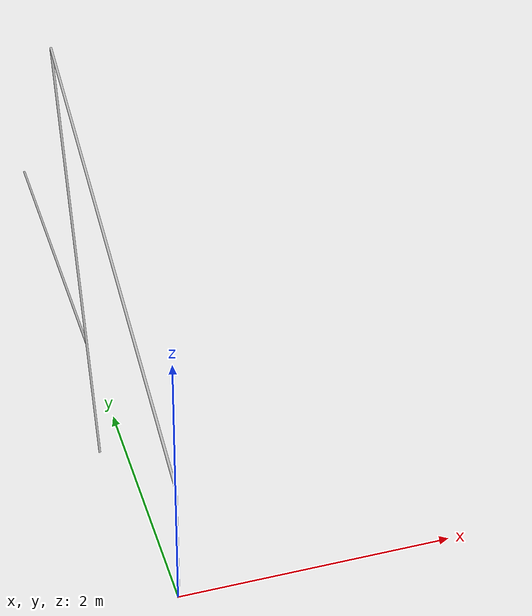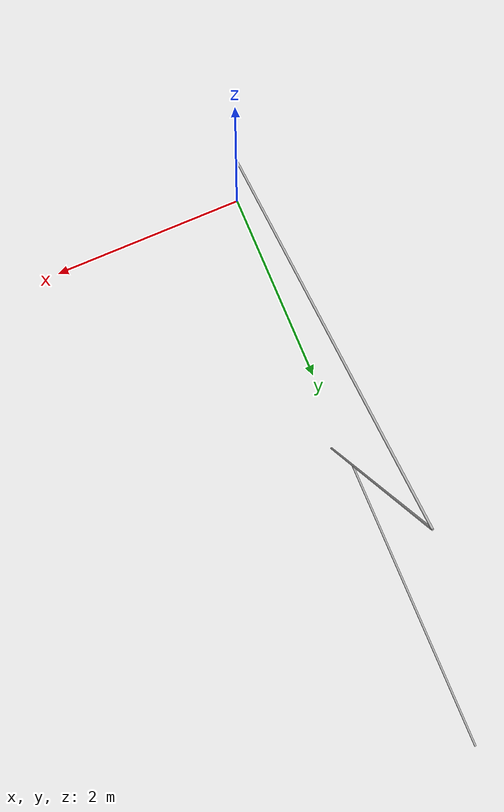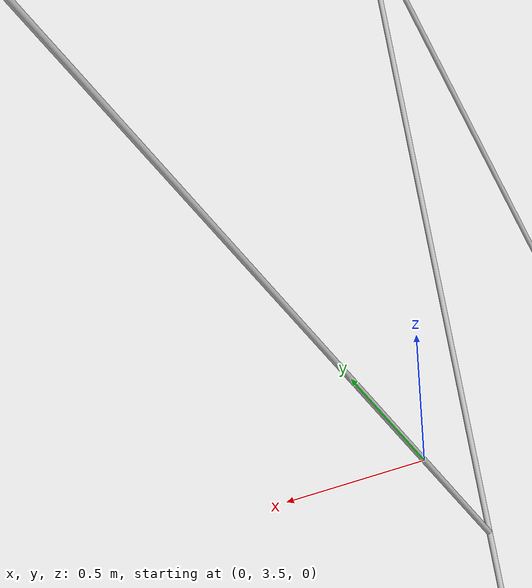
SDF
<sdf version='1.7'>
  <model name='four_bar_linkage'>
    <joint name='world2link0' type='fixed'>
      <pose relative_to='__model__'>0 0 0 0 0 0</pose>
      <parent>world</parent>
      <child>link0</child>
    </joint>
    <link name='link_0'>
      <pose relative_to='world2link0'>0 3 0 0 0 0</pose>
      <visual name='link_0'>
        <pose>0 1.5 0 1.5708 0 0</pose>
        <geometry>
            <cylinder>
              <radius>0.01</radius>
              <length>3.0</length>
            </cylinder>
        </geometry>
      </visual>
    </link>

    <joint name='joint1' type='revolute'>
      <pose relative_to='link0'>0 0 0 0 0 0</pose>
      <parent>link_0</parent>
      <child>link_1</child>
      <axis>
        <xyz>1 0 0</xyz>
      </axis>
    </joint>
    <link name='link_1'>
      <pose relative_to='joint1'>0 0 0 0 0 0</pose>
      <inertial>
        <pose>0 0 0.5 0 -0 0</pose>
        <mass>1</mass>
        <inertia>
          <ixx>0.08333</ixx>
          <ixy>0</ixy>
          <ixz>0</ixz>
          <iyy>0.08333</iyy>
          <iyz>0</iyz>
          <izz>0</izz>
        </inertia>
      </inertial>
      <visual name='link1'>
        <pose>0 0 0.5 0 0 0</pose>
        <geometry>
            <cylinder>
              <radius>0.01</radius>
              <length>1.0</length>
            </cylinder>
        </geometry>
      </visual>
    </link>

    <joint name='joint2' type='revolute'>
      <pose relative_to='link_1'>0 0 1 -1.2175 0 0</pose>
      <parent>link_1</parent>
      <child>link_2</child>
      <axis>
        <xyz>1 0 0</xyz>
      </axis>
    </joint>
    <link name='link_2'>
      <pose relative_to='joint2'>0 0 0 0 0 0</pose>
      <inertial>
        <pose>0 0 2 0 0 0</pose>
        <mass>4</mass>
        <inertia>
          <ixx>5.333</ixx>
          <ixy>0</ixy>
          <ixz>0</ixz>
          <iyy>5.333</iyy>
          <iyz>0</iyz>
          <izz>0</izz>
        </inertia>
      </inertial>
      <visual name='link_2_visual'>
        <pose>0 0 2 0 0 0</pose>
        <geometry>
            <cylinder>
              <radius>0.01</radius>
              <length>4.0</length>
            </cylinder>
        </geometry>
      </visual>
    </link>

    <joint name='joint3' type='revolute'>
      <pose relative_to='link_2'>0 0 4 0.9116 0 0</pose>
      <parent>link_2</parent>
      <child>link_3</child>
      <axis>
        <xyz>1 0 0</xyz>
      </axis>
    </joint>
    <link name='link_3'>
      <pose relative_to='joint3'>0 0 0 0 0 0</pose>
      <inertial>
        <pose>0 0 -1.75 0 0 0</pose>
        <mass>3.5</mass>
        <inertia>
          <ixx>1.30208</ixx>
          <ixy>0</ixy>
          <ixz>0</ixz>
          <iyy>0.30208</iyy>
          <iyz>0</iyz>
          <izz>0</izz>
        </inertia>
      </inertial>
      <visual name='link_3_visual'>
        <pose>0 0 -1.75 0 0 0</pose>
        <geometry>
            <cylinder>
              <radius>0.01</radius>
              <length>3.5</length>
            </cylinder>
        </geometry>
      </visual>
    </link>

    <joint name='closed' type='revolute'>
      <pose relative_to='link_0'>0 3 0 0 0 0</pose>
      <parent>link_3</parent>
      <child>link_0</child>
      <axis>
        <xyz>1 0 0</xyz>
      </axis>
    </joint>
  </model>
</sdf>
